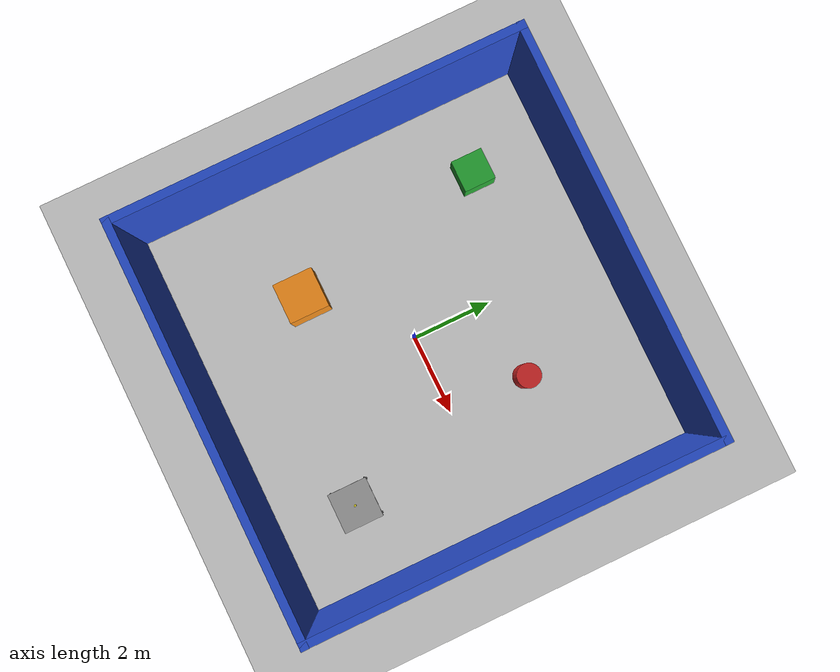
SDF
<?xml version="1.0"?>
<sdf version="1.6">
  <world name="competition_arena">

    <!-- Physics engine configuration -->
    <physics name="default_physics" default="true" type="ode">
      <max_step_size>0.001</max_step_size>
      <real_time_factor>1.0</real_time_factor>
      <ode>
        <solver>
          <type>quick</type>
          <iters>50</iters>
          <sor>1.3</sor>
        </solver>
      </ode>
    </physics>

    <!-- Scene settings -->
    <scene>
      <ambient>0.4 0.4 0.4 1.0</ambient>
      <background>0.7 0.7 0.7 1.0</background>
      <shadows>true</shadows>
      <grid>false</grid>
    </scene>

    <!-- Lighting -->
    <light name="sun" type="directional">
      <cast_shadows>true</cast_shadows>
      <pose frame="">0 0 10 0 0 0</pose>
      <diffuse>0.8 0.8 0.8 1.0</diffuse>
      <specular>0.2 0.2 0.2 1.0</specular>
      <attenuation>
        <range>1000</range>
        <constant>0.9</constant>
        <linear>0.01</linear>
        <quadratic>0.001</quadratic>
      </attenuation>
      <direction>0.5 0.5 -1</direction>
    </light>

    <!-- Ground plane -->
    <include>
      <uri>model://ground_plane</uri>
    </include>

    <!-- Competition arena walls -->
    <model name="arena_walls">
      <static>true</static>
      <pose frame="">0 0 0 0 0 0</pose>

      <!-- Outer walls (10m x 10m arena) -->
      <link name="wall_north">
        <pose frame="">0 5 1.5 0 0 0</pose>
        <visual name="wall_north_visual">
          <geometry>
            <box>
              <size>10.2 0.2 3.0</size>
            </box>
          </geometry>
          <material>
            <script>
              <name>Gazebo/Blue</name>
              <uri>file://media/materials/scripts/gazebo.material</uri>
            </script>
          </material>
        </visual>
        <collision name="wall_north_collision">
          <geometry>
            <box>
              <size>10.2 0.2 3.0</size>
            </box>
          </geometry>
        </collision>
      </link>

      <link name="wall_south">
        <pose frame="">0 -5 1.5 0 0 0</pose>
        <visual name="wall_south_visual">
          <geometry>
            <box>
              <size>10.2 0.2 3.0</size>
            </box>
          </geometry>
          <material>
            <script>
              <name>Gazebo/Blue</name>
              <uri>file://media/materials/scripts/gazebo.material</uri>
            </script>
          </material>
        </visual>
        <collision name="wall_south_collision">
          <geometry>
            <box>
              <size>10.2 0.2 3.0</size>
            </box>
          </geometry>
        </collision>
      </link>

      <link name="wall_east">
        <pose frame="">5 0 1.5 0 0 1.57</pose>
        <visual name="wall_east_visual">
          <geometry>
            <box>
              <size>10.2 0.2 3.0</size>
            </box>
          </geometry>
          <material>
            <script>
              <name>Gazebo/Blue</name>
              <uri>file://media/materials/scripts/gazebo.material</uri>
            </script>
          </material>
        </visual>
        <collision name="wall_east_collision">
          <geometry>
            <box>
              <size>10.2 0.2 3.0</size>
            </box>
          </geometry>
        </collision>
      </link>

      <link name="wall_west">
        <pose frame="">-5 0 1.5 0 0 1.57</pose>
        <visual name="wall_west_visual">
          <geometry>
            <box>
              <size>10.2 0.2 3.0</size>
            </box>
          </geometry>
          <material>
            <script>
              <name>Gazebo/Blue</name>
              <uri>file://media/materials/scripts/gazebo.material</uri>
            </script>
          </material>
        </visual>
        <collision name="wall_west_collision">
          <geometry>
            <box>
              <size>10.2 0.2 3.0</size>
            </box>
          </geometry>
        </collision>
      </link>
    </model>

    <!-- Competition objects/obstacles -->
    <model name="obstacle_1">
      <pose frame="">2 2 0.5 0 0 0</pose>
      <static>true</static>

      <link name="body">
        <visual name="visual">
          <geometry>
            <cylinder>
              <radius>0.3</radius>
              <length>1.0</length>
            </cylinder>
          </geometry>
          <material>
            <script>
              <name>Gazebo/Red</name>
              <uri>file://media/materials/scripts/gazebo.material</uri>
            </script>
          </material>
        </visual>
        <collision name="collision">
          <geometry>
            <cylinder>
              <radius>0.3</radius>
              <length>1.0</length>
            </cylinder>
          </geometry>
        </collision>
        <inertial>
          <mass>10.0</mass>
          <inertia>
            <ixx>0.1</ixx>
            <ixy>0.0</ixy>
            <ixz>0.0</ixz>
            <iyy>0.1</iyy>
            <iyz>0.0</iyz>
            <izz>0.2</izz>
          </inertia>
        </inertial>
      </link>
    </model>

    <model name="obstacle_2">
      <pose frame="">-2 -2 0.5 0 0 0</pose>
      <static>true</static>

      <link name="body">
        <visual name="visual">
          <geometry>
            <box>
              <size>1.0 1.0 1.0</size>
            </box>
          </geometry>
          <material>
            <script>
              <name>Gazebo/Orange</name>
              <uri>file://media/materials/scripts/gazebo.material</uri>
            </script>
          </material>
        </visual>
        <collision name="collision">
          <geometry>
            <box>
              <size>1.0 1.0 1.0</size>
            </box>
          </geometry>
        </collision>
        <inertial>
          <mass>5.0</mass>
          <inertia>
            <ixx>0.05</ixx>
            <ixy>0.0</ixy>
            <ixz>0.0</ixz>
            <iyy>0.05</iyy>
            <iyz>0.0</iyz>
            <izz>0.1</izz>
          </inertia>
        </inertial>
      </link>
    </model>

    <!-- Target objects for pick and place -->
    <model name="target_table_1">
      <pose frame="">3 -3 0.4 0 0 0</pose>
      <static>true</static>

      <link name="table_top">
        <visual name="visual">
          <geometry>
            <box>
              <size>1.0 1.0 0.05</size>
            </box>
          </geometry>
          <material>
            <script>
              <name>Gazebo/Grey</name>
              <uri>file://media/materials/scripts/gazebo.material</uri>
            </script>
          </material>
        </visual>
        <collision name="collision">
          <geometry>
            <box>
              <size>1.0 1.0 0.05</size>
            </box>
          </geometry>
        </collision>
      </link>

      <link name="table_leg1">
        <pose frame="">0.45 0.45 -0.4 0 0 0</pose>
        <visual name="visual">
          <geometry>
            <cylinder>
              <radius>0.05</radius>
              <length>0.8</length>
            </cylinder>
          </geometry>
          <material>
            <script>
              <name>Gazebo/Black</name>
              <uri>file://media/materials/scripts/gazebo.material</uri>
            </script>
          </material>
        </visual>
        <collision name="collision">
          <geometry>
            <cylinder>
              <radius>0.05</radius>
              <length>0.8</length>
            </cylinder>
          </geometry>
        </collision>
      </link>

      <link name="table_leg2">
        <pose frame="">-0.45 0.45 -0.4 0 0 0</pose>
        <visual name="visual">
          <geometry>
            <cylinder>
              <radius>0.05</radius>
              <length>0.8</length>
            </cylinder>
          </geometry>
          <material>
            <script>
              <name>Gazebo/Black</name>
              <uri>file://media/materials/scripts/gazebo.material</uri>
            </script>
          </material>
        </visual>
        <collision name="collision">
          <geometry>
            <cylinder>
              <radius>0.05</radius>
              <length>0.8</length>
            </cylinder>
          </geometry>
        </collision>
      </link>

      <link name="table_leg3">
        <pose frame="">0.45 -0.45 -0.4 0 0 0</pose>
        <visual name="visual">
          <geometry>
            <cylinder>
              <radius>0.05</radius>
              <length>0.8</length>
            </cylinder>
          </geometry>
          <material>
            <script>
              <name>Gazebo/Black</name>
              <uri>file://media/materials/scripts/gazebo.material</uri>
            </script>
          </material>
        </visual>
        <collision name="collision">
          <geometry>
            <cylinder>
              <radius>0.05</radius>
              <length>0.8</length>
            </cylinder>
          </geometry>
        </collision>
      </link>

      <link name="table_leg4">
        <pose frame="">-0.45 -0.45 -0.4 0 0 0</pose>
        <visual name="visual">
          <geometry>
            <cylinder>
              <radius>0.05</radius>
              <length>0.8</length>
            </cylinder>
          </geometry>
          <material>
            <script>
              <name>Gazebo/Black</name>
              <uri>file://media/materials/scripts/gazebo.material</uri>
            </script>
          </material>
        </visual>
        <collision name="collision">
          <geometry>
            <cylinder>
              <radius>0.05</radius>
              <length>0.8</length>
            </cylinder>
          </geometry>
        </collision>
      </link>
    </model>

    <!-- Target bin for placing objects -->
    <model name="target_bin">
      <pose frame="">-3 3 0.3 0 0 0</pose>
      <static>true</static>

      <link name="bin_body">
        <visual name="visual">
          <geometry>
            <box>
              <size>0.8 0.8 0.6</size>
            </box>
          </geometry>
          <material>
            <script>
              <name>Gazebo/Green</name>
              <uri>file://media/materials/scripts/gazebo.material</uri>
            </script>
          </material>
        </visual>
        <collision name="collision">
          <geometry>
            <box>
              <size>0.8 0.8 0.6</size>
            </box>
          </geometry>
        </collision>
        <inertial>
          <mass>2.0</mass>
          <inertia>
            <ixx>0.02</ixx>
            <ixy>0.0</ixy>
            <ixz>0.0</ixz>
            <iyy>0.02</iyy>
            <iyz>0.0</iyz>
            <izz>0.04</izz>
          </inertia>
        </inertial>
      </link>
    </model>

    <!-- Sample objects for manipulation -->
    <model name="sample_cube">
      <pose frame="">3 -3 0.45 0 0 0</pose>
      <static>false</static>

      <link name="cube_body">
        <visual name="visual">
          <geometry>
            <box>
              <size>0.05 0.05 0.05</size>
            </box>
          </geometry>
          <material>
            <script>
              <name>Gazebo/Yellow</name>
              <uri>file://media/materials/scripts/gazebo.material</uri>
            </script>
          </material>
        </visual>
        <collision name="collision">
          <geometry>
            <box>
              <size>0.05 0.05 0.05</size>
            </box>
          </geometry>
        </collision>
        <inertial>
          <mass>0.1</mass>
          <inertia>
            <ixx>0.001</ixx>
            <ixy>0.0</ixy>
            <ixz>0.0</ixz>
            <iyy>0.001</iyy>
            <iyz>0.0</iyz>
            <izz>0.001</izz>
          </inertia>
        </inertial>
      </link>
    </model>

  </world>
</sdf>
